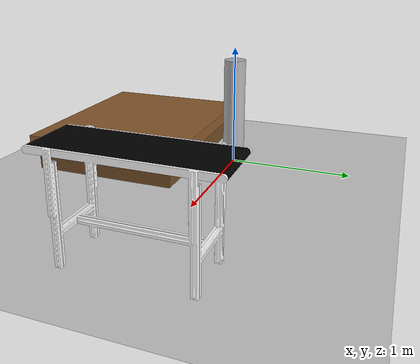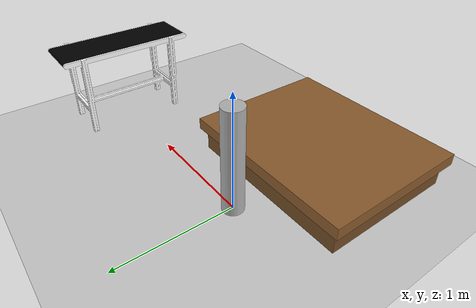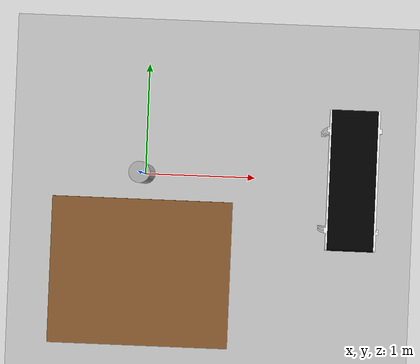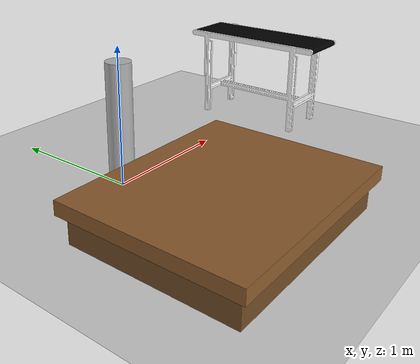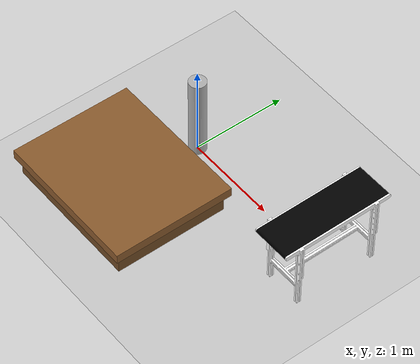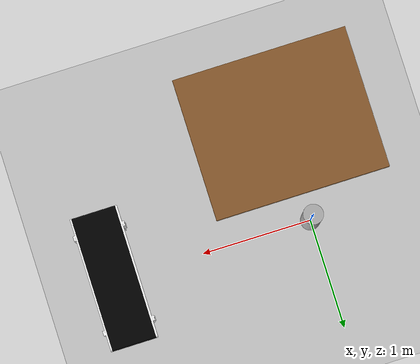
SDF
<sdf version="1.8">
 <world name="default">
  <plugin filename="gz-sim-physics-system" name="gz::sim::systems::Physics"/>
  <plugin filename="gz-sim-user-commands-system" name="gz::sim::systems::UserCommands"/>
  <plugin filename="gz-sim-scene-broadcaster-system" name="gz::sim::systems::SceneBroadcaster"/>
  <plugin filename="gz-sim-sensors-system" name="gz::sim::systems::Sensors">
   <render_engine>ogre2</render_engine>
  </plugin>
  <plugin filename="gz-sim-contact-system" name="gz::sim::systems::Contact"/>
  <scene>
   <ambient>0.4 0.4 0.4 1</ambient>
   <background>0.7 0.7 0.7 1</background>
   <shadows>true</shadows>
   <grid>false</grid>
  </scene>
  <light type="directional" name="sun">
   <pose>0 0 10 0 0 0</pose>
   <diffuse>0.8 0.8 0.8 1</diffuse>
   <specular>0.2 0.2 0.2 1</specular>
   <direction>-0.5 0.1 -0.9</direction>
   <visualize>false</visualize>
  </light>
  <model name="ground_plane">
   <static>true</static>
   <link name="link">
    <collision name="collision">
     <geometry><plane><normal>0 0 1</normal><size>100 100</size></plane></geometry>
    </collision>
    <visual name="visual">
     <geometry><plane><normal>0 0 1</normal><size>100 100</size></plane></geometry>
     <material>
      <ambient>0.8 0.8 0.8 1</ambient>
      <diffuse>0.8 0.8 0.8 1</diffuse>
      <specular>0.8 0.8 0.8 1</specular>
     </material>
    </visual>
   </link>
  </model>
  <include><uri>model://conveyor_belt</uri><name>conveyor</name><pose>1.80 0 0 0 0 0</pose></include>
  <model name="target_pallet">
   <static>true</static>
   <pose>0 -0.88 0 0 0 0</pose>
   <link name="link">
    <visual name="deck_visual">
     <pose>0 0 0.25 0 0 0</pose>
     <geometry><box><size>1.60 1.30 0.10</size></box></geometry>
     <material>
      <ambient>0.40 0.26 0.13 1</ambient>
      <diffuse>0.55 0.36 0.18 1</diffuse>
      <specular>0.1 0.1 0.1 1</specular>
     </material>
    </visual>
    <collision name="deck_collision">
     <pose>0 0 0.25 0 0 0</pose>
     <geometry><box><size>1.60 1.30 0.10</size></box></geometry>
    </collision>
    <visual name="stand_visual">
     <pose>0 0 0.10 0 0 0</pose>
     <geometry><box><size>1.50 1.20 0.20</size></box></geometry>
     <material>
      <ambient>0.30 0.20 0.10 1</ambient>
      <diffuse>0.45 0.30 0.15 1</diffuse>
      <specular>0.1 0.1 0.1 1</specular>
     </material>
    </visual>
    <collision name="stand_collision">
     <pose>0 0 0.10 0 0 0</pose>
     <geometry><box><size>1.50 1.20 0.20</size></box></geometry>
    </collision>
   </link>
  </model>
  <model name="robotbase">
   <static>true</static>
   <link name="link">
    <pose>0 0 0.45 0 0 0</pose>
    <visual name="visual">
     <geometry><cylinder><radius>0.09</radius><length>0.9</length></cylinder></geometry>
     <material>
      <ambient>0.3 0.3 0.3 1</ambient>
      <diffuse>0.7 0.7 0.7 1</diffuse>
      <specular>0.01 0.01 0.01 1</specular>
     </material>
    </visual>
    <collision name="collision">
     <geometry><cylinder><radius>0.09</radius><length>0.9</length></cylinder></geometry>
    </collision>
   </link>
  </model>
 </world>
</sdf>

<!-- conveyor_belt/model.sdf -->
<sdf version="1.9">

  <model name="conveyor_belt">

    <static>true</static>

    <link name="link">

      <pose>0 0 0 0 0 0</pose>

      <visual name="visual">

        <pose>0 0 0 0 0 0</pose>

        <geometry>
          <mesh>
            <uri>meshes/conveyor_belt.dae</uri>
          </mesh>
        </geometry>

      </visual>

      <collision name="collision">

        <pose>0 0 0.71 0 0 0</pose>

        <geometry>
          <box>
            <size>0.50 1.20 0.055</size>
          </box>
        </geometry>

        <surface>

          <contact>
            <ode>
              <kp>100000</kp>
              <kd>10</kd>
              <min_depth>0.001</min_depth>
              <max_vel>1.0</max_vel>
            </ode>
          </contact>

          <friction>
            <ode>

              <!--
                La cinta se mueve en el eje Y local.
              -->

              <fdir1>1 0 0</fdir1>

              <mu>2.0</mu>

              <mu2>0.5</mu2>

            </ode>
          </friction>

        </surface>

      </collision>

    </link>

    <!-- TRACK CONTROLLER                                       -->

    <plugin
      filename="gz-sim-track-controller-system"
      name="gz::sim::systems::TrackController">

      <link>link</link>

      <track_orientation>0 0 1.57079632679</track_orientation>

      <min_velocity>-1.0</min_velocity>

      <max_velocity>1.0</max_velocity>

    </plugin>

  </model>

</sdf>
